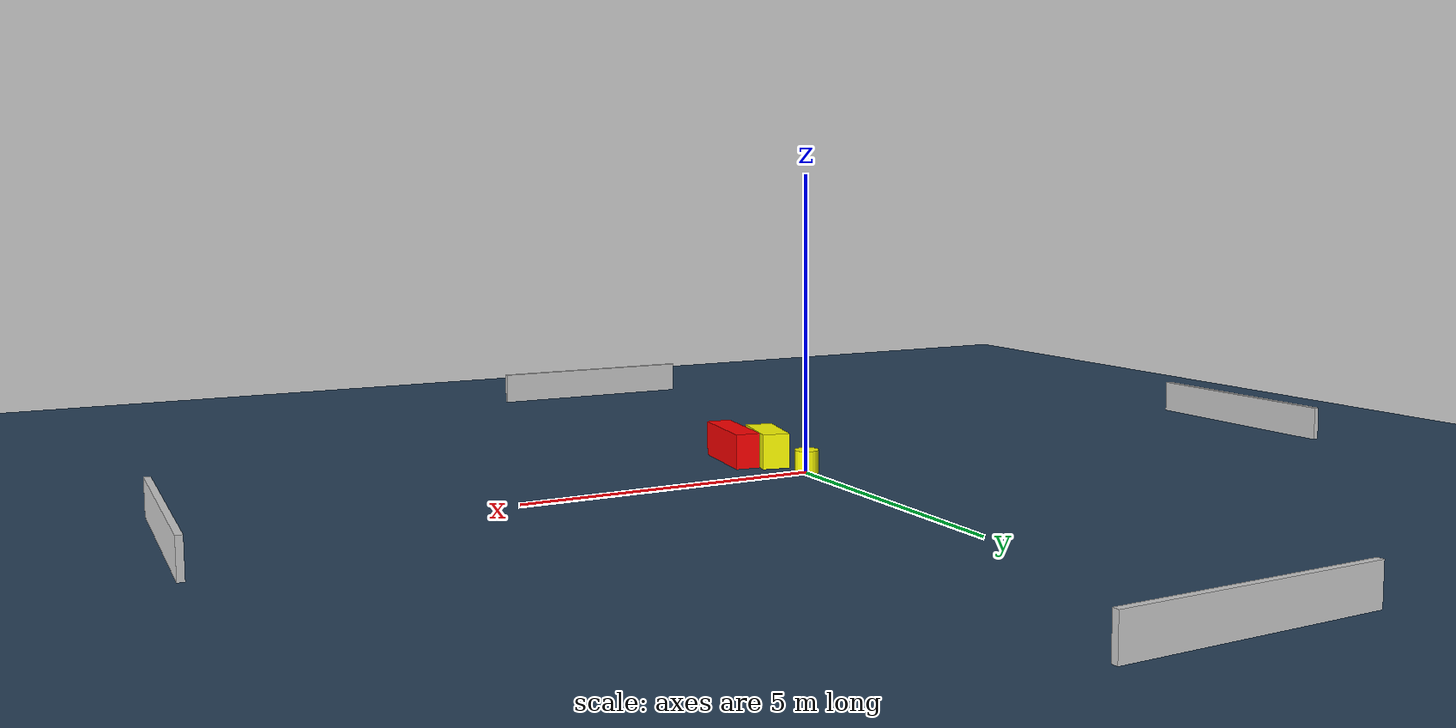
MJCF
<?xml version="1.0" ?>
<mujoco model="generated_environment">
  <option timestep="0.01" integrator="RK4" cone="elliptic"/>
  <default>
    <geom density="1"/>
  </default>
  <asset>
    <texture builtin="gradient" height="3072" name="skybox" rgb1="0.3 0.5 0.7" rgb2="0 0 0" type="skybox" width="512"/>
    <texture builtin="checker" height="300" name="groundplane" rgb1="0.2 0.3 0.4" rgb2="0.1 0.2 0.3" type="2d" width="300"/>
    <material name="groundplane" reflectance="0.2" texrepeat="5 5" texture="groundplane"/>
  </asset>
  <worldbody>
    <light dir="0 0 -1" directional="true" pos="0 0 1.5"/>
    <geom condim="3" friction="0.5 0.005 0.001" material="groundplane" name="floor" pos="0 0 0" size="0 0 0.05" type="plane"/>
    <body name="walls">
      <geom name="wall_1" condim="4" pos="-10.0 0.0 0.3" rgba="0.800000011920929 0.800000011920929 0.800000011920929 1.0" size="0.05 2.0 0.3" type="box"/>
      <geom name="wall_2" condim="4" pos="10.0 0.0 0.3" rgba="0.800000011920929 0.800000011920929 0.800000011920929 1.0" size="0.05 2.0 0.3" type="box"/>
      <geom name="wall_3" condim="4" pos="0.0 -10.0 0.3" rgba="0.800000011920929 0.800000011920929 0.800000011920929 1.0" size="2.0 0.05 0.3" type="box"/>
      <geom name="wall_4" condim="4" pos="0.0 10.0 0.3" rgba="0.800000011920929 0.800000011920929 0.800000011920929 1.0" size="2.0 0.05 0.3" type="box"/>
    </body>
    <body name="robot">
      <joint name="joint_x" type="slide" pos="0 0 0" axis="1 0 0"/>
      <joint name="joint_y" type="slide" pos="0 0 0" axis="0 1 0"/>
      <geom name="robot" type="cylinder" pos="0.0 0.0 0.2" size="0.2 0.2 0.0" mass="5.0" friction="1.0 0.005 0.0001" condim="4" rgba="1.0 1.0 0.0 1.0"/>
    </body>
    <body name="obstacle_1_movable">
      <geom name="obstacle_1_movable" condim="4" pos="0.17290276586440542 -1.0898450013233114 0.3" euler="0 0 258.4419544514472" friction="0.0 0.005 0.001" rgba="1.0 1.0 0.0 1.0" size="0.5357268811236577 0.23475878601821848 0.3" type="box" mass="0.1"/>
      <joint type="free"/>
    </body>
    <body name="obstacle_2_static">
      <geom name="obstacle_2_static" condim="4" pos="0.6128203893824447 -1.5506378670168053 0.3" euler="0 0 353.82490303317866" friction="0.0 0.005 0.001" rgba="1.0 0.0 0.0 1.0" size="0.21428035262167655 0.7429220227822246 0.3" type="box"/>
    </body>
  </worldbody>
  <actuator>
    <motor name="actuator_x" joint="joint_x" gear="1" ctrlrange="-1 1"/>
    <motor name="actuator_y" joint="joint_y" gear="1" ctrlrange="-1 1"/>
  </actuator>
</mujoco>
